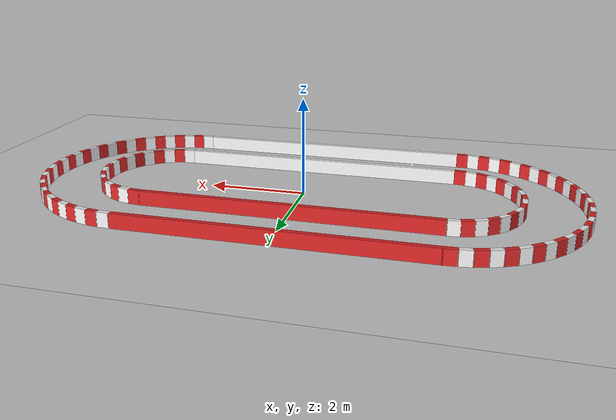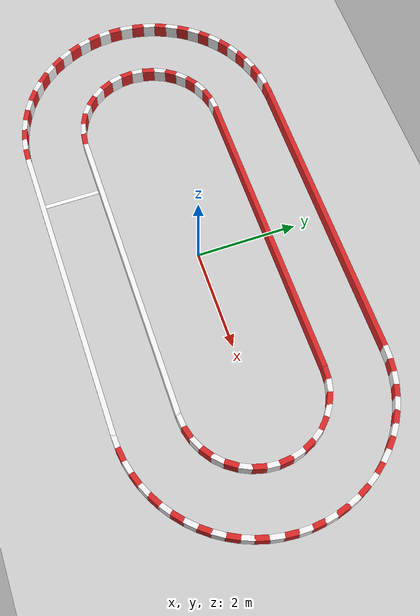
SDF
<?xml version="1.0"?>
<!-- GENERATED by tools/make_race_track.py - edit the script, not this file.
     Stadium track, counter-clockwise. Start line at x=-2 on the bottom straight
     (spawn the car at x=-2.5 y=-2 yaw=0). -->
<sdf version="1.6">
  <world name="race_track">
    <include><uri>model://ground_plane</uri></include>
    <include><uri>model://sun</uri></include>

    <model name="track_walls">
      <static>true</static>
      <link name="link">
      <collision name="c0"><pose>0.0000 -1.4000 0.15 0 0 0.00000</pose>
        <geometry><box><size>6.0200 0.1 0.3</size></box></geometry></collision>
      <visual name="v0"><pose>0.0000 -1.4000 0.15 0 0 0.00000</pose>
        <geometry><box><size>6.0200 0.1 0.3</size></box></geometry>
        <material><ambient>0.95 0.95 0.95 1</ambient>
          <diffuse>0.95 0.95 0.95 1</diffuse></material></visual>
      <collision name="c1"><pose>0.0000 1.4000 0.15 0 0 0.00000</pose>
        <geometry><box><size>6.0200 0.1 0.3</size></box></geometry></collision>
      <visual name="v1"><pose>0.0000 1.4000 0.15 0 0 0.00000</pose>
        <geometry><box><size>6.0200 0.1 0.3</size></box></geometry>
        <material><ambient>0.85 0.15 0.15 1</ambient>
          <diffuse>0.85 0.15 0.15 1</diffuse></material></visual>
      <collision name="c2"><pose>3.1216 -1.3894 0.15 0 0 0.08727</pose>
        <geometry><box><size>0.2640 0.1 0.3</size></box></geometry></collision>
      <visual name="v2"><pose>3.1216 -1.3894 0.15 0 0 0.08727</pose>
        <geometry><box><size>0.2640 0.1 0.3</size></box></geometry>
        <material><ambient>0.95 0.95 0.95 1</ambient>
          <diffuse>0.95 0.95 0.95 1</diffuse></material></visual>
      <collision name="c3"><pose>3.3610 -1.3472 0.15 0 0 0.26180</pose>
        <geometry><box><size>0.2640 0.1 0.3</size></box></geometry></collision>
      <visual name="v3"><pose>3.3610 -1.3472 0.15 0 0 0.26180</pose>
        <geometry><box><size>0.2640 0.1 0.3</size></box></geometry>
        <material><ambient>0.85 0.15 0.15 1</ambient>
          <diffuse>0.85 0.15 0.15 1</diffuse></material></visual>
      <collision name="c4"><pose>3.5894 -1.2640 0.15 0 0 0.43633</pose>
        <geometry><box><size>0.2640 0.1 0.3</size></box></geometry></collision>
      <visual name="v4"><pose>3.5894 -1.2640 0.15 0 0 0.43633</pose>
        <geometry><box><size>0.2640 0.1 0.3</size></box></geometry>
        <material><ambient>0.95 0.95 0.95 1</ambient>
          <diffuse>0.95 0.95 0.95 1</diffuse></material></visual>
      <collision name="c5"><pose>3.8000 -1.1424 0.15 0 0 0.61087</pose>
        <geometry><box><size>0.2640 0.1 0.3</size></box></geometry></collision>
      <visual name="v5"><pose>3.8000 -1.1424 0.15 0 0 0.61087</pose>
        <geometry><box><size>0.2640 0.1 0.3</size></box></geometry>
        <material><ambient>0.85 0.15 0.15 1</ambient>
          <diffuse>0.85 0.15 0.15 1</diffuse></material></visual>
      <collision name="c6"><pose>3.9862 -0.9862 0.15 0 0 0.78540</pose>
        <geometry><box><size>0.2640 0.1 0.3</size></box></geometry></collision>
      <visual name="v6"><pose>3.9862 -0.9862 0.15 0 0 0.78540</pose>
        <geometry><box><size>0.2640 0.1 0.3</size></box></geometry>
        <material><ambient>0.95 0.95 0.95 1</ambient>
          <diffuse>0.95 0.95 0.95 1</diffuse></material></visual>
      <collision name="c7"><pose>4.1424 -0.8000 0.15 0 0 0.95993</pose>
        <geometry><box><size>0.2640 0.1 0.3</size></box></geometry></collision>
      <visual name="v7"><pose>4.1424 -0.8000 0.15 0 0 0.95993</pose>
        <geometry><box><size>0.2640 0.1 0.3</size></box></geometry>
        <material><ambient>0.85 0.15 0.15 1</ambient>
          <diffuse>0.85 0.15 0.15 1</diffuse></material></visual>
      <collision name="c8"><pose>4.2640 -0.5894 0.15 0 0 1.13446</pose>
        <geometry><box><size>0.2640 0.1 0.3</size></box></geometry></collision>
      <visual name="v8"><pose>4.2640 -0.5894 0.15 0 0 1.13446</pose>
        <geometry><box><size>0.2640 0.1 0.3</size></box></geometry>
        <material><ambient>0.95 0.95 0.95 1</ambient>
          <diffuse>0.95 0.95 0.95 1</diffuse></material></visual>
      <collision name="c9"><pose>4.3472 -0.3610 0.15 0 0 1.30900</pose>
        <geometry><box><size>0.2640 0.1 0.3</size></box></geometry></collision>
      <visual name="v9"><pose>4.3472 -0.3610 0.15 0 0 1.30900</pose>
        <geometry><box><size>0.2640 0.1 0.3</size></box></geometry>
        <material><ambient>0.85 0.15 0.15 1</ambient>
          <diffuse>0.85 0.15 0.15 1</diffuse></material></visual>
      <collision name="c10"><pose>4.3894 -0.1216 0.15 0 0 1.48353</pose>
        <geometry><box><size>0.2640 0.1 0.3</size></box></geometry></collision>
      <visual name="v10"><pose>4.3894 -0.1216 0.15 0 0 1.48353</pose>
        <geometry><box><size>0.2640 0.1 0.3</size></box></geometry>
        <material><ambient>0.95 0.95 0.95 1</ambient>
          <diffuse>0.95 0.95 0.95 1</diffuse></material></visual>
      <collision name="c11"><pose>4.3894 0.1216 0.15 0 0 1.65806</pose>
        <geometry><box><size>0.2640 0.1 0.3</size></box></geometry></collision>
      <visual name="v11"><pose>4.3894 0.1216 0.15 0 0 1.65806</pose>
        <geometry><box><size>0.2640 0.1 0.3</size></box></geometry>
        <material><ambient>0.85 0.15 0.15 1</ambient>
          <diffuse>0.85 0.15 0.15 1</diffuse></material></visual>
      <collision name="c12"><pose>4.3472 0.3610 0.15 0 0 1.83260</pose>
        <geometry><box><size>0.2640 0.1 0.3</size></box></geometry></collision>
      <visual name="v12"><pose>4.3472 0.3610 0.15 0 0 1.83260</pose>
        <geometry><box><size>0.2640 0.1 0.3</size></box></geometry>
        <material><ambient>0.95 0.95 0.95 1</ambient>
          <diffuse>0.95 0.95 0.95 1</diffuse></material></visual>
      <collision name="c13"><pose>4.2640 0.5894 0.15 0 0 2.00713</pose>
        <geometry><box><size>0.2640 0.1 0.3</size></box></geometry></collision>
      <visual name="v13"><pose>4.2640 0.5894 0.15 0 0 2.00713</pose>
        <geometry><box><size>0.2640 0.1 0.3</size></box></geometry>
        <material><ambient>0.85 0.15 0.15 1</ambient>
          <diffuse>0.85 0.15 0.15 1</diffuse></material></visual>
      <collision name="c14"><pose>4.1424 0.8000 0.15 0 0 2.18166</pose>
        <geometry><box><size>0.2640 0.1 0.3</size></box></geometry></collision>
      <visual name="v14"><pose>4.1424 0.8000 0.15 0 0 2.18166</pose>
        <geometry><box><size>0.2640 0.1 0.3</size></box></geometry>
        <material><ambient>0.95 0.95 0.95 1</ambient>
          <diffuse>0.95 0.95 0.95 1</diffuse></material></visual>
      <collision name="c15"><pose>3.9862 0.9862 0.15 0 0 2.35619</pose>
        <geometry><box><size>0.2640 0.1 0.3</size></box></geometry></collision>
      <visual name="v15"><pose>3.9862 0.9862 0.15 0 0 2.35619</pose>
        <geometry><box><size>0.2640 0.1 0.3</size></box></geometry>
        <material><ambient>0.85 0.15 0.15 1</ambient>
          <diffuse>0.85 0.15 0.15 1</diffuse></material></visual>
      <collision name="c16"><pose>3.8000 1.1424 0.15 0 0 2.53073</pose>
        <geometry><box><size>0.2640 0.1 0.3</size></box></geometry></collision>
      <visual name="v16"><pose>3.8000 1.1424 0.15 0 0 2.53073</pose>
        <geometry><box><size>0.2640 0.1 0.3</size></box></geometry>
        <material><ambient>0.95 0.95 0.95 1</ambient>
          <diffuse>0.95 0.95 0.95 1</diffuse></material></visual>
      <collision name="c17"><pose>3.5894 1.2640 0.15 0 0 2.70526</pose>
        <geometry><box><size>0.2640 0.1 0.3</size></box></geometry></collision>
      <visual name="v17"><pose>3.5894 1.2640 0.15 0 0 2.70526</pose>
        <geometry><box><size>0.2640 0.1 0.3</size></box></geometry>
        <material><ambient>0.85 0.15 0.15 1</ambient>
          <diffuse>0.85 0.15 0.15 1</diffuse></material></visual>
      <collision name="c18"><pose>3.3610 1.3472 0.15 0 0 2.87979</pose>
        <geometry><box><size>0.2640 0.1 0.3</size></box></geometry></collision>
      <visual name="v18"><pose>3.3610 1.3472 0.15 0 0 2.87979</pose>
        <geometry><box><size>0.2640 0.1 0.3</size></box></geometry>
        <material><ambient>0.95 0.95 0.95 1</ambient>
          <diffuse>0.95 0.95 0.95 1</diffuse></material></visual>
      <collision name="c19"><pose>3.1216 1.3894 0.15 0 0 3.05433</pose>
        <geometry><box><size>0.2640 0.1 0.3</size></box></geometry></collision>
      <visual name="v19"><pose>3.1216 1.3894 0.15 0 0 3.05433</pose>
        <geometry><box><size>0.2640 0.1 0.3</size></box></geometry>
        <material><ambient>0.85 0.15 0.15 1</ambient>
          <diffuse>0.85 0.15 0.15 1</diffuse></material></visual>
      <collision name="c20"><pose>-3.1216 1.3894 0.15 0 0 -3.05433</pose>
        <geometry><box><size>0.2640 0.1 0.3</size></box></geometry></collision>
      <visual name="v20"><pose>-3.1216 1.3894 0.15 0 0 -3.05433</pose>
        <geometry><box><size>0.2640 0.1 0.3</size></box></geometry>
        <material><ambient>0.95 0.95 0.95 1</ambient>
          <diffuse>0.95 0.95 0.95 1</diffuse></material></visual>
      <collision name="c21"><pose>-3.3610 1.3472 0.15 0 0 -2.87979</pose>
        <geometry><box><size>0.2640 0.1 0.3</size></box></geometry></collision>
      <visual name="v21"><pose>-3.3610 1.3472 0.15 0 0 -2.87979</pose>
        <geometry><box><size>0.2640 0.1 0.3</size></box></geometry>
        <material><ambient>0.85 0.15 0.15 1</ambient>
          <diffuse>0.85 0.15 0.15 1</diffuse></material></visual>
      <collision name="c22"><pose>-3.5894 1.2640 0.15 0 0 -2.70526</pose>
        <geometry><box><size>0.2640 0.1 0.3</size></box></geometry></collision>
      <visual name="v22"><pose>-3.5894 1.2640 0.15 0 0 -2.70526</pose>
        <geometry><box><size>0.2640 0.1 0.3</size></box></geometry>
        <material><ambient>0.95 0.95 0.95 1</ambient>
          <diffuse>0.95 0.95 0.95 1</diffuse></material></visual>
      <collision name="c23"><pose>-3.8000 1.1424 0.15 0 0 -2.53073</pose>
        <geometry><box><size>0.2640 0.1 0.3</size></box></geometry></collision>
      <visual name="v23"><pose>-3.8000 1.1424 0.15 0 0 -2.53073</pose>
        <geometry><box><size>0.2640 0.1 0.3</size></box></geometry>
        <material><ambient>0.85 0.15 0.15 1</ambient>
          <diffuse>0.85 0.15 0.15 1</diffuse></material></visual>
      <collision name="c24"><pose>-3.9862 0.9862 0.15 0 0 -2.35619</pose>
        <geometry><box><size>0.2640 0.1 0.3</size></box></geometry></collision>
      <visual name="v24"><pose>-3.9862 0.9862 0.15 0 0 -2.35619</pose>
        <geometry><box><size>0.2640 0.1 0.3</size></box></geometry>
        <material><ambient>0.95 0.95 0.95 1</ambient>
          <diffuse>0.95 0.95 0.95 1</diffuse></material></visual>
      <collision name="c25"><pose>-4.1424 0.8000 0.15 0 0 -2.18166</pose>
        <geometry><box><size>0.2640 0.1 0.3</size></box></geometry></collision>
      <visual name="v25"><pose>-4.1424 0.8000 0.15 0 0 -2.18166</pose>
        <geometry><box><size>0.2640 0.1 0.3</size></box></geometry>
        <material><ambient>0.85 0.15 0.15 1</ambient>
          <diffuse>0.85 0.15 0.15 1</diffuse></material></visual>
      <collision name="c26"><pose>-4.2640 0.5894 0.15 0 0 -2.00713</pose>
        <geometry><box><size>0.2640 0.1 0.3</size></box></geometry></collision>
      <visual name="v26"><pose>-4.2640 0.5894 0.15 0 0 -2.00713</pose>
        <geometry><box><size>0.2640 0.1 0.3</size></box></geometry>
        <material><ambient>0.95 0.95 0.95 1</ambient>
          <diffuse>0.95 0.95 0.95 1</diffuse></material></visual>
      <collision name="c27"><pose>-4.3472 0.3610 0.15 0 0 -1.83260</pose>
        <geometry><box><size>0.2640 0.1 0.3</size></box></geometry></collision>
      <visual name="v27"><pose>-4.3472 0.3610 0.15 0 0 -1.83260</pose>
        <geometry><box><size>0.2640 0.1 0.3</size></box></geometry>
        <material><ambient>0.85 0.15 0.15 1</ambient>
          <diffuse>0.85 0.15 0.15 1</diffuse></material></visual>
      <collision name="c28"><pose>-4.3894 0.1216 0.15 0 0 -1.65806</pose>
        <geometry><box><size>0.2640 0.1 0.3</size></box></geometry></collision>
      <visual name="v28"><pose>-4.3894 0.1216 0.15 0 0 -1.65806</pose>
        <geometry><box><size>0.2640 0.1 0.3</size></box></geometry>
        <material><ambient>0.95 0.95 0.95 1</ambient>
          <diffuse>0.95 0.95 0.95 1</diffuse></material></visual>
      <collision name="c29"><pose>-4.3894 -0.1216 0.15 0 0 -1.48353</pose>
        <geometry><box><size>0.2640 0.1 0.3</size></box></geometry></collision>
      <visual name="v29"><pose>-4.3894 -0.1216 0.15 0 0 -1.48353</pose>
        <geometry><box><size>0.2640 0.1 0.3</size></box></geometry>
        <material><ambient>0.85 0.15 0.15 1</ambient>
          <diffuse>0.85 0.15 0.15 1</diffuse></material></visual>
      <collision name="c30"><pose>-4.3472 -0.3610 0.15 0 0 -1.30900</pose>
        <geometry><box><size>0.2640 0.1 0.3</size></box></geometry></collision>
      <visual name="v30"><pose>-4.3472 -0.3610 0.15 0 0 -1.30900</pose>
        <geometry><box><size>0.2640 0.1 0.3</size></box></geometry>
        <material><ambient>0.95 0.95 0.95 1</ambient>
          <diffuse>0.95 0.95 0.95 1</diffuse></material></visual>
      <collision name="c31"><pose>-4.2640 -0.5894 0.15 0 0 -1.13446</pose>
        <geometry><box><size>0.2640 0.1 0.3</size></box></geometry></collision>
      <visual name="v31"><pose>-4.2640 -0.5894 0.15 0 0 -1.13446</pose>
        <geometry><box><size>0.2640 0.1 0.3</size></box></geometry>
        <material><ambient>0.85 0.15 0.15 1</ambient>
          <diffuse>0.85 0.15 0.15 1</diffuse></material></visual>
      <collision name="c32"><pose>-4.1424 -0.8000 0.15 0 0 -0.95993</pose>
        <geometry><box><size>0.2640 0.1 0.3</size></box></geometry></collision>
      <visual name="v32"><pose>-4.1424 -0.8000 0.15 0 0 -0.95993</pose>
        <geometry><box><size>0.2640 0.1 0.3</size></box></geometry>
        <material><ambient>0.95 0.95 0.95 1</ambient>
          <diffuse>0.95 0.95 0.95 1</diffuse></material></visual>
      <collision name="c33"><pose>-3.9862 -0.9862 0.15 0 0 -0.78540</pose>
        <geometry><box><size>0.2640 0.1 0.3</size></box></geometry></collision>
      <visual name="v33"><pose>-3.9862 -0.9862 0.15 0 0 -0.78540</pose>
        <geometry><box><size>0.2640 0.1 0.3</size></box></geometry>
        <material><ambient>0.85 0.15 0.15 1</ambient>
          <diffuse>0.85 0.15 0.15 1</diffuse></material></visual>
      <collision name="c34"><pose>-3.8000 -1.1424 0.15 0 0 -0.61087</pose>
        <geometry><box><size>0.2640 0.1 0.3</size></box></geometry></collision>
      <visual name="v34"><pose>-3.8000 -1.1424 0.15 0 0 -0.61087</pose>
        <geometry><box><size>0.2640 0.1 0.3</size></box></geometry>
        <material><ambient>0.95 0.95 0.95 1</ambient>
          <diffuse>0.95 0.95 0.95 1</diffuse></material></visual>
      <collision name="c35"><pose>-3.5894 -1.2640 0.15 0 0 -0.43633</pose>
        <geometry><box><size>0.2640 0.1 0.3</size></box></geometry></collision>
      <visual name="v35"><pose>-3.5894 -1.2640 0.15 0 0 -0.43633</pose>
        <geometry><box><size>0.2640 0.1 0.3</size></box></geometry>
        <material><ambient>0.85 0.15 0.15 1</ambient>
          <diffuse>0.85 0.15 0.15 1</diffuse></material></visual>
      <collision name="c36"><pose>-3.3610 -1.3472 0.15 0 0 -0.26180</pose>
        <geometry><box><size>0.2640 0.1 0.3</size></box></geometry></collision>
      <visual name="v36"><pose>-3.3610 -1.3472 0.15 0 0 -0.26180</pose>
        <geometry><box><size>0.2640 0.1 0.3</size></box></geometry>
        <material><ambient>0.95 0.95 0.95 1</ambient>
          <diffuse>0.95 0.95 0.95 1</diffuse></material></visual>
      <collision name="c37"><pose>-3.1216 -1.3894 0.15 0 0 -0.08727</pose>
        <geometry><box><size>0.2640 0.1 0.3</size></box></geometry></collision>
      <visual name="v37"><pose>-3.1216 -1.3894 0.15 0 0 -0.08727</pose>
        <geometry><box><size>0.2640 0.1 0.3</size></box></geometry>
        <material><ambient>0.85 0.15 0.15 1</ambient>
          <diffuse>0.85 0.15 0.15 1</diffuse></material></visual>
      <collision name="c38"><pose>0.0000 -2.6000 0.15 0 0 0.00000</pose>
        <geometry><box><size>6.0200 0.1 0.3</size></box></geometry></collision>
      <visual name="v38"><pose>0.0000 -2.6000 0.15 0 0 0.00000</pose>
        <geometry><box><size>6.0200 0.1 0.3</size></box></geometry>
        <material><ambient>0.95 0.95 0.95 1</ambient>
          <diffuse>0.95 0.95 0.95 1</diffuse></material></visual>
      <collision name="c39"><pose>0.0000 2.6000 0.15 0 0 0.00000</pose>
        <geometry><box><size>6.0200 0.1 0.3</size></box></geometry></collision>
      <visual name="v39"><pose>0.0000 2.6000 0.15 0 0 0.00000</pose>
        <geometry><box><size>6.0200 0.1 0.3</size></box></geometry>
        <material><ambient>0.85 0.15 0.15 1</ambient>
          <diffuse>0.85 0.15 0.15 1</diffuse></material></visual>
      <collision name="c40"><pose>3.1236 -2.5941 0.15 0 0 0.04760</pose>
        <geometry><box><size>0.2674 0.1 0.3</size></box></geometry></collision>
      <visual name="v40"><pose>3.1236 -2.5941 0.15 0 0 0.04760</pose>
        <geometry><box><size>0.2674 0.1 0.3</size></box></geometry>
        <material><ambient>0.95 0.95 0.95 1</ambient>
          <diffuse>0.95 0.95 0.95 1</diffuse></material></visual>
      <collision name="c41"><pose>3.3696 -2.5706 0.15 0 0 0.14280</pose>
        <geometry><box><size>0.2674 0.1 0.3</size></box></geometry></collision>
      <visual name="v41"><pose>3.3696 -2.5706 0.15 0 0 0.14280</pose>
        <geometry><box><size>0.2674 0.1 0.3</size></box></geometry>
        <material><ambient>0.85 0.15 0.15 1</ambient>
          <diffuse>0.85 0.15 0.15 1</diffuse></material></visual>
      <collision name="c42"><pose>3.6123 -2.5238 0.15 0 0 0.23800</pose>
        <geometry><box><size>0.2674 0.1 0.3</size></box></geometry></collision>
      <visual name="v42"><pose>3.6123 -2.5238 0.15 0 0 0.23800</pose>
        <geometry><box><size>0.2674 0.1 0.3</size></box></geometry>
        <material><ambient>0.95 0.95 0.95 1</ambient>
          <diffuse>0.95 0.95 0.95 1</diffuse></material></visual>
      <collision name="c43"><pose>3.8494 -2.4542 0.15 0 0 0.33320</pose>
        <geometry><box><size>0.2674 0.1 0.3</size></box></geometry></collision>
      <visual name="v43"><pose>3.8494 -2.4542 0.15 0 0 0.33320</pose>
        <geometry><box><size>0.2674 0.1 0.3</size></box></geometry>
        <material><ambient>0.85 0.15 0.15 1</ambient>
          <diffuse>0.85 0.15 0.15 1</diffuse></material></visual>
      <collision name="c44"><pose>4.0789 -2.3624 0.15 0 0 0.42840</pose>
        <geometry><box><size>0.2674 0.1 0.3</size></box></geometry></collision>
      <visual name="v44"><pose>4.0789 -2.3624 0.15 0 0 0.42840</pose>
        <geometry><box><size>0.2674 0.1 0.3</size></box></geometry>
        <material><ambient>0.95 0.95 0.95 1</ambient>
          <diffuse>0.95 0.95 0.95 1</diffuse></material></visual>
      <collision name="c45"><pose>4.2985 -2.2491 0.15 0 0 0.52360</pose>
        <geometry><box><size>0.2674 0.1 0.3</size></box></geometry></collision>
      <visual name="v45"><pose>4.2985 -2.2491 0.15 0 0 0.52360</pose>
        <geometry><box><size>0.2674 0.1 0.3</size></box></geometry>
        <material><ambient>0.85 0.15 0.15 1</ambient>
          <diffuse>0.85 0.15 0.15 1</diffuse></material></visual>
      <collision name="c46"><pose>4.5064 -2.1155 0.15 0 0 0.61880</pose>
        <geometry><box><size>0.2674 0.1 0.3</size></box></geometry></collision>
      <visual name="v46"><pose>4.5064 -2.1155 0.15 0 0 0.61880</pose>
        <geometry><box><size>0.2674 0.1 0.3</size></box></geometry>
        <material><ambient>0.95 0.95 0.95 1</ambient>
          <diffuse>0.95 0.95 0.95 1</diffuse></material></visual>
      <collision name="c47"><pose>4.7007 -1.9627 0.15 0 0 0.71400</pose>
        <geometry><box><size>0.2674 0.1 0.3</size></box></geometry></collision>
      <visual name="v47"><pose>4.7007 -1.9627 0.15 0 0 0.71400</pose>
        <geometry><box><size>0.2674 0.1 0.3</size></box></geometry>
        <material><ambient>0.85 0.15 0.15 1</ambient>
          <diffuse>0.85 0.15 0.15 1</diffuse></material></visual>
      <collision name="c48"><pose>4.8796 -1.7922 0.15 0 0 0.80920</pose>
        <geometry><box><size>0.2674 0.1 0.3</size></box></geometry></collision>
      <visual name="v48"><pose>4.8796 -1.7922 0.15 0 0 0.80920</pose>
        <geometry><box><size>0.2674 0.1 0.3</size></box></geometry>
        <material><ambient>0.95 0.95 0.95 1</ambient>
          <diffuse>0.95 0.95 0.95 1</diffuse></material></visual>
      <collision name="c49"><pose>5.0414 -1.6054 0.15 0 0 0.90440</pose>
        <geometry><box><size>0.2674 0.1 0.3</size></box></geometry></collision>
      <visual name="v49"><pose>5.0414 -1.6054 0.15 0 0 0.90440</pose>
        <geometry><box><size>0.2674 0.1 0.3</size></box></geometry>
        <material><ambient>0.85 0.15 0.15 1</ambient>
          <diffuse>0.85 0.15 0.15 1</diffuse></material></visual>
      <collision name="c50"><pose>5.1848 -1.4041 0.15 0 0 0.99960</pose>
        <geometry><box><size>0.2674 0.1 0.3</size></box></geometry></collision>
      <visual name="v50"><pose>5.1848 -1.4041 0.15 0 0 0.99960</pose>
        <geometry><box><size>0.2674 0.1 0.3</size></box></geometry>
        <material><ambient>0.95 0.95 0.95 1</ambient>
          <diffuse>0.95 0.95 0.95 1</diffuse></material></visual>
      <collision name="c51"><pose>5.3084 -1.1900 0.15 0 0 1.09480</pose>
        <geometry><box><size>0.2674 0.1 0.3</size></box></geometry></collision>
      <visual name="v51"><pose>5.3084 -1.1900 0.15 0 0 1.09480</pose>
        <geometry><box><size>0.2674 0.1 0.3</size></box></geometry>
        <material><ambient>0.85 0.15 0.15 1</ambient>
          <diffuse>0.85 0.15 0.15 1</diffuse></material></visual>
      <collision name="c52"><pose>5.4110 -0.9652 0.15 0 0 1.19000</pose>
        <geometry><box><size>0.2674 0.1 0.3</size></box></geometry></collision>
      <visual name="v52"><pose>5.4110 -0.9652 0.15 0 0 1.19000</pose>
        <geometry><box><size>0.2674 0.1 0.3</size></box></geometry>
        <material><ambient>0.95 0.95 0.95 1</ambient>
          <diffuse>0.95 0.95 0.95 1</diffuse></material></visual>
      <collision name="c53"><pose>5.4919 -0.7317 0.15 0 0 1.28520</pose>
        <geometry><box><size>0.2674 0.1 0.3</size></box></geometry></collision>
      <visual name="v53"><pose>5.4919 -0.7317 0.15 0 0 1.28520</pose>
        <geometry><box><size>0.2674 0.1 0.3</size></box></geometry>
        <material><ambient>0.85 0.15 0.15 1</ambient>
          <diffuse>0.85 0.15 0.15 1</diffuse></material></visual>
      <collision name="c54"><pose>5.5501 -0.4915 0.15 0 0 1.38040</pose>
        <geometry><box><size>0.2674 0.1 0.3</size></box></geometry></collision>
      <visual name="v54"><pose>5.5501 -0.4915 0.15 0 0 1.38040</pose>
        <geometry><box><size>0.2674 0.1 0.3</size></box></geometry>
        <material><ambient>0.95 0.95 0.95 1</ambient>
          <diffuse>0.95 0.95 0.95 1</diffuse></material></visual>
      <collision name="c55"><pose>5.5853 -0.2469 0.15 0 0 1.47560</pose>
        <geometry><box><size>0.2674 0.1 0.3</size></box></geometry></collision>
      <visual name="v55"><pose>5.5853 -0.2469 0.15 0 0 1.47560</pose>
        <geometry><box><size>0.2674 0.1 0.3</size></box></geometry>
        <material><ambient>0.85 0.15 0.15 1</ambient>
          <diffuse>0.85 0.15 0.15 1</diffuse></material></visual>
      <collision name="c56"><pose>5.5971 0.0000 0.15 0 0 1.57080</pose>
        <geometry><box><size>0.2674 0.1 0.3</size></box></geometry></collision>
      <visual name="v56"><pose>5.5971 0.0000 0.15 0 0 1.57080</pose>
        <geometry><box><size>0.2674 0.1 0.3</size></box></geometry>
        <material><ambient>0.95 0.95 0.95 1</ambient>
          <diffuse>0.95 0.95 0.95 1</diffuse></material></visual>
      <collision name="c57"><pose>5.5853 0.2469 0.15 0 0 1.66600</pose>
        <geometry><box><size>0.2674 0.1 0.3</size></box></geometry></collision>
      <visual name="v57"><pose>5.5853 0.2469 0.15 0 0 1.66600</pose>
        <geometry><box><size>0.2674 0.1 0.3</size></box></geometry>
        <material><ambient>0.85 0.15 0.15 1</ambient>
          <diffuse>0.85 0.15 0.15 1</diffuse></material></visual>
      <collision name="c58"><pose>5.5501 0.4915 0.15 0 0 1.76120</pose>
        <geometry><box><size>0.2674 0.1 0.3</size></box></geometry></collision>
      <visual name="v58"><pose>5.5501 0.4915 0.15 0 0 1.76120</pose>
        <geometry><box><size>0.2674 0.1 0.3</size></box></geometry>
        <material><ambient>0.95 0.95 0.95 1</ambient>
          <diffuse>0.95 0.95 0.95 1</diffuse></material></visual>
      <collision name="c59"><pose>5.4919 0.7317 0.15 0 0 1.85640</pose>
        <geometry><box><size>0.2674 0.1 0.3</size></box></geometry></collision>
      <visual name="v59"><pose>5.4919 0.7317 0.15 0 0 1.85640</pose>
        <geometry><box><size>0.2674 0.1 0.3</size></box></geometry>
        <material><ambient>0.85 0.15 0.15 1</ambient>
          <diffuse>0.85 0.15 0.15 1</diffuse></material></visual>
      <collision name="c60"><pose>5.4110 0.9652 0.15 0 0 1.95160</pose>
        <geometry><box><size>0.2674 0.1 0.3</size></box></geometry></collision>
      <visual name="v60"><pose>5.4110 0.9652 0.15 0 0 1.95160</pose>
        <geometry><box><size>0.2674 0.1 0.3</size></box></geometry>
        <material><ambient>0.95 0.95 0.95 1</ambient>
          <diffuse>0.95 0.95 0.95 1</diffuse></material></visual>
      <collision name="c61"><pose>5.3084 1.1900 0.15 0 0 2.04680</pose>
        <geometry><box><size>0.2674 0.1 0.3</size></box></geometry></collision>
      <visual name="v61"><pose>5.3084 1.1900 0.15 0 0 2.04680</pose>
        <geometry><box><size>0.2674 0.1 0.3</size></box></geometry>
        <material><ambient>0.85 0.15 0.15 1</ambient>
          <diffuse>0.85 0.15 0.15 1</diffuse></material></visual>
      <collision name="c62"><pose>5.1848 1.4041 0.15 0 0 2.14199</pose>
        <geometry><box><size>0.2674 0.1 0.3</size></box></geometry></collision>
      <visual name="v62"><pose>5.1848 1.4041 0.15 0 0 2.14199</pose>
        <geometry><box><size>0.2674 0.1 0.3</size></box></geometry>
        <material><ambient>0.95 0.95 0.95 1</ambient>
          <diffuse>0.95 0.95 0.95 1</diffuse></material></visual>
      <collision name="c63"><pose>5.0414 1.6054 0.15 0 0 2.23719</pose>
        <geometry><box><size>0.2674 0.1 0.3</size></box></geometry></collision>
      <visual name="v63"><pose>5.0414 1.6054 0.15 0 0 2.23719</pose>
        <geometry><box><size>0.2674 0.1 0.3</size></box></geometry>
        <material><ambient>0.85 0.15 0.15 1</ambient>
          <diffuse>0.85 0.15 0.15 1</diffuse></material></visual>
      <collision name="c64"><pose>4.8796 1.7922 0.15 0 0 2.33239</pose>
        <geometry><box><size>0.2674 0.1 0.3</size></box></geometry></collision>
      <visual name="v64"><pose>4.8796 1.7922 0.15 0 0 2.33239</pose>
        <geometry><box><size>0.2674 0.1 0.3</size></box></geometry>
        <material><ambient>0.95 0.95 0.95 1</ambient>
          <diffuse>0.95 0.95 0.95 1</diffuse></material></visual>
      <collision name="c65"><pose>4.7007 1.9627 0.15 0 0 2.42759</pose>
        <geometry><box><size>0.2674 0.1 0.3</size></box></geometry></collision>
      <visual name="v65"><pose>4.7007 1.9627 0.15 0 0 2.42759</pose>
        <geometry><box><size>0.2674 0.1 0.3</size></box></geometry>
        <material><ambient>0.85 0.15 0.15 1</ambient>
          <diffuse>0.85 0.15 0.15 1</diffuse></material></visual>
      <collision name="c66"><pose>4.5064 2.1155 0.15 0 0 2.52279</pose>
        <geometry><box><size>0.2674 0.1 0.3</size></box></geometry></collision>
      <visual name="v66"><pose>4.5064 2.1155 0.15 0 0 2.52279</pose>
        <geometry><box><size>0.2674 0.1 0.3</size></box></geometry>
        <material><ambient>0.95 0.95 0.95 1</ambient>
          <diffuse>0.95 0.95 0.95 1</diffuse></material></visual>
      <collision name="c67"><pose>4.2985 2.2491 0.15 0 0 2.61799</pose>
        <geometry><box><size>0.2674 0.1 0.3</size></box></geometry></collision>
      <visual name="v67"><pose>4.2985 2.2491 0.15 0 0 2.61799</pose>
        <geometry><box><size>0.2674 0.1 0.3</size></box></geometry>
        <material><ambient>0.85 0.15 0.15 1</ambient>
          <diffuse>0.85 0.15 0.15 1</diffuse></material></visual>
      <collision name="c68"><pose>4.0789 2.3624 0.15 0 0 2.71319</pose>
        <geometry><box><size>0.2674 0.1 0.3</size></box></geometry></collision>
      <visual name="v68"><pose>4.0789 2.3624 0.15 0 0 2.71319</pose>
        <geometry><box><size>0.2674 0.1 0.3</size></box></geometry>
        <material><ambient>0.95 0.95 0.95 1</ambient>
          <diffuse>0.95 0.95 0.95 1</diffuse></material></visual>
      <collision name="c69"><pose>3.8494 2.4542 0.15 0 0 2.80839</pose>
        <geometry><box><size>0.2674 0.1 0.3</size></box></geometry></collision>
      <visual name="v69"><pose>3.8494 2.4542 0.15 0 0 2.80839</pose>
        <geometry><box><size>0.2674 0.1 0.3</size></box></geometry>
        <material><ambient>0.85 0.15 0.15 1</ambient>
          <diffuse>0.85 0.15 0.15 1</diffuse></material></visual>
      <collision name="c70"><pose>3.6123 2.5238 0.15 0 0 2.90359</pose>
        <geometry><box><size>0.2674 0.1 0.3</size></box></geometry></collision>
      <visual name="v70"><pose>3.6123 2.5238 0.15 0 0 2.90359</pose>
        <geometry><box><size>0.2674 0.1 0.3</size></box></geometry>
        <material><ambient>0.95 0.95 0.95 1</ambient>
          <diffuse>0.95 0.95 0.95 1</diffuse></material></visual>
      <collision name="c71"><pose>3.3696 2.5706 0.15 0 0 2.99879</pose>
        <geometry><box><size>0.2674 0.1 0.3</size></box></geometry></collision>
      <visual name="v71"><pose>3.3696 2.5706 0.15 0 0 2.99879</pose>
        <geometry><box><size>0.2674 0.1 0.3</size></box></geometry>
        <material><ambient>0.85 0.15 0.15 1</ambient>
          <diffuse>0.85 0.15 0.15 1</diffuse></material></visual>
      <collision name="c72"><pose>3.1236 2.5941 0.15 0 0 3.09399</pose>
        <geometry><box><size>0.2674 0.1 0.3</size></box></geometry></collision>
      <visual name="v72"><pose>3.1236 2.5941 0.15 0 0 3.09399</pose>
        <geometry><box><size>0.2674 0.1 0.3</size></box></geometry>
        <material><ambient>0.95 0.95 0.95 1</ambient>
          <diffuse>0.95 0.95 0.95 1</diffuse></material></visual>
      <collision name="c73"><pose>-3.1236 2.5941 0.15 0 0 -3.09399</pose>
        <geometry><box><size>0.2674 0.1 0.3</size></box></geometry></collision>
      <visual name="v73"><pose>-3.1236 2.5941 0.15 0 0 -3.09399</pose>
        <geometry><box><size>0.2674 0.1 0.3</size></box></geometry>
        <material><ambient>0.85 0.15 0.15 1</ambient>
          <diffuse>0.85 0.15 0.15 1</diffuse></material></visual>
      <collision name="c74"><pose>-3.3696 2.5706 0.15 0 0 -2.99879</pose>
        <geometry><box><size>0.2674 0.1 0.3</size></box></geometry></collision>
      <visual name="v74"><pose>-3.3696 2.5706 0.15 0 0 -2.99879</pose>
        <geometry><box><size>0.2674 0.1 0.3</size></box></geometry>
        <material><ambient>0.95 0.95 0.95 1</ambient>
          <diffuse>0.95 0.95 0.95 1</diffuse></material></visual>
      <collision name="c75"><pose>-3.6123 2.5238 0.15 0 0 -2.90359</pose>
        <geometry><box><size>0.2674 0.1 0.3</size></box></geometry></collision>
      <visual name="v75"><pose>-3.6123 2.5238 0.15 0 0 -2.90359</pose>
        <geometry><box><size>0.2674 0.1 0.3</size></box></geometry>
        <material><ambient>0.85 0.15 0.15 1</ambient>
          <diffuse>0.85 0.15 0.15 1</diffuse></material></visual>
      <collision name="c76"><pose>-3.8494 2.4542 0.15 0 0 -2.80839</pose>
        <geometry><box><size>0.2674 0.1 0.3</size></box></geometry></collision>
      <visual name="v76"><pose>-3.8494 2.4542 0.15 0 0 -2.80839</pose>
        <geometry><box><size>0.2674 0.1 0.3</size></box></geometry>
        <material><ambient>0.95 0.95 0.95 1</ambient>
          <diffuse>0.95 0.95 0.95 1</diffuse></material></visual>
      <collision name="c77"><pose>-4.0789 2.3624 0.15 0 0 -2.71319</pose>
        <geometry><box><size>0.2674 0.1 0.3</size></box></geometry></collision>
      <visual name="v77"><pose>-4.0789 2.3624 0.15 0 0 -2.71319</pose>
        <geometry><box><size>0.2674 0.1 0.3</size></box></geometry>
        <material><ambient>0.85 0.15 0.15 1</ambient>
          <diffuse>0.85 0.15 0.15 1</diffuse></material></visual>
      <collision name="c78"><pose>-4.2985 2.2491 0.15 0 0 -2.61799</pose>
        <geometry><box><size>0.2674 0.1 0.3</size></box></geometry></collision>
      <visual name="v78"><pose>-4.2985 2.2491 0.15 0 0 -2.61799</pose>
        <geometry><box><size>0.2674 0.1 0.3</size></box></geometry>
        <material><ambient>0.95 0.95 0.95 1</ambient>
          <diffuse>0.95 0.95 0.95 1</diffuse></material></visual>
      <collision name="c79"><pose>-4.5064 2.1155 0.15 0 0 -2.52279</pose>
        <geometry><box><size>0.2674 0.1 0.3</size></box></geometry></collision>
      <visual name="v79"><pose>-4.5064 2.1155 0.15 0 0 -2.52279</pose>
        <geometry><box><size>0.2674 0.1 0.3</size></box></geometry>
        <material><ambient>0.85 0.15 0.15 1</ambient>
          <diffuse>0.85 0.15 0.15 1</diffuse></material></visual>
      <collision name="c80"><pose>-4.7007 1.9627 0.15 0 0 -2.42759</pose>
        <geometry><box><size>0.2674 0.1 0.3</size></box></geometry></collision>
      <visual name="v80"><pose>-4.7007 1.9627 0.15 0 0 -2.42759</pose>
        <geometry><box><size>0.2674 0.1 0.3</size></box></geometry>
        <material><ambient>0.95 0.95 0.95 1</ambient>
          <diffuse>0.95 0.95 0.95 1</diffuse></material></visual>
      <collision name="c81"><pose>-4.8796 1.7922 0.15 0 0 -2.33239</pose>
        <geometry><box><size>0.2674 0.1 0.3</size></box></geometry></collision>
      <visual name="v81"><pose>-4.8796 1.7922 0.15 0 0 -2.33239</pose>
        <geometry><box><size>0.2674 0.1 0.3</size></box></geometry>
        <material><ambient>0.85 0.15 0.15 1</ambient>
          <diffuse>0.85 0.15 0.15 1</diffuse></material></visual>
      <collision name="c82"><pose>-5.0414 1.6054 0.15 0 0 -2.23719</pose>
        <geometry><box><size>0.2674 0.1 0.3</size></box></geometry></collision>
      <visual name="v82"><pose>-5.0414 1.6054 0.15 0 0 -2.23719</pose>
        <geometry><box><size>0.2674 0.1 0.3</size></box></geometry>
        <material><ambient>0.95 0.95 0.95 1</ambient>
          <diffuse>0.95 0.95 0.95 1</diffuse></material></visual>
      <collision name="c83"><pose>-5.1848 1.4041 0.15 0 0 -2.14199</pose>
        <geometry><box><size>0.2674 0.1 0.3</size></box></geometry></collision>
      <visual name="v83"><pose>-5.1848 1.4041 0.15 0 0 -2.14199</pose>
        <geometry><box><size>0.2674 0.1 0.3</size></box></geometry>
        <material><ambient>0.85 0.15 0.15 1</ambient>
          <diffuse>0.85 0.15 0.15 1</diffuse></material></visual>
      <collision name="c84"><pose>-5.3084 1.1900 0.15 0 0 -2.04680</pose>
        <geometry><box><size>0.2674 0.1 0.3</size></box></geometry></collision>
      <visual name="v84"><pose>-5.3084 1.1900 0.15 0 0 -2.04680</pose>
        <geometry><box><size>0.2674 0.1 0.3</size></box></geometry>
        <material><ambient>0.95 0.95 0.95 1</ambient>
          <diffuse>0.95 0.95 0.95 1</diffuse></material></visual>
      <collision name="c85"><pose>-5.4110 0.9652 0.15 0 0 -1.95160</pose>
        <geometry><box><size>0.2674 0.1 0.3</size></box></geometry></collision>
      <visual name="v85"><pose>-5.4110 0.9652 0.15 0 0 -1.95160</pose>
        <geometry><box><size>0.2674 0.1 0.3</size></box></geometry>
        <material><ambient>0.85 0.15 0.15 1</ambient>
          <diffuse>0.85 0.15 0.15 1</diffuse></material></visual>
      <collision name="c86"><pose>-5.4919 0.7317 0.15 0 0 -1.85640</pose>
        <geometry><box><size>0.2674 0.1 0.3</size></box></geometry></collision>
      <visual name="v86"><pose>-5.4919 0.7317 0.15 0 0 -1.85640</pose>
        <geometry><box><size>0.2674 0.1 0.3</size></box></geometry>
        <material><ambient>0.95 0.95 0.95 1</ambient>
          <diffuse>0.95 0.95 0.95 1</diffuse></material></visual>
      <collision name="c87"><pose>-5.5501 0.4915 0.15 0 0 -1.76120</pose>
        <geometry><box><size>0.2674 0.1 0.3</size></box></geometry></collision>
      <visual name="v87"><pose>-5.5501 0.4915 0.15 0 0 -1.76120</pose>
        <geometry><box><size>0.2674 0.1 0.3</size></box></geometry>
        <material><ambient>0.85 0.15 0.15 1</ambient>
          <diffuse>0.85 0.15 0.15 1</diffuse></material></visual>
      <collision name="c88"><pose>-5.5853 0.2469 0.15 0 0 -1.66600</pose>
        <geometry><box><size>0.2674 0.1 0.3</size></box></geometry></collision>
      <visual name="v88"><pose>-5.5853 0.2469 0.15 0 0 -1.66600</pose>
        <geometry><box><size>0.2674 0.1 0.3</size></box></geometry>
        <material><ambient>0.95 0.95 0.95 1</ambient>
          <diffuse>0.95 0.95 0.95 1</diffuse></material></visual>
      <collision name="c89"><pose>-5.5971 0.0000 0.15 0 0 -1.57080</pose>
        <geometry><box><size>0.2674 0.1 0.3</size></box></geometry></collision>
      <visual name="v89"><pose>-5.5971 0.0000 0.15 0 0 -1.57080</pose>
        <geometry><box><size>0.2674 0.1 0.3</size></box></geometry>
        <material><ambient>0.85 0.15 0.15 1</ambient>
          <diffuse>0.85 0.15 0.15 1</diffuse></material></visual>
      <collision name="c90"><pose>-5.5853 -0.2469 0.15 0 0 -1.47560</pose>
        <geometry><box><size>0.2674 0.1 0.3</size></box></geometry></collision>
      <visual name="v90"><pose>-5.5853 -0.2469 0.15 0 0 -1.47560</pose>
        <geometry><box><size>0.2674 0.1 0.3</size></box></geometry>
        <material><ambient>0.95 0.95 0.95 1</ambient>
          <diffuse>0.95 0.95 0.95 1</diffuse></material></visual>
      <collision name="c91"><pose>-5.5501 -0.4915 0.15 0 0 -1.38040</pose>
        <geometry><box><size>0.2674 0.1 0.3</size></box></geometry></collision>
      <visual name="v91"><pose>-5.5501 -0.4915 0.15 0 0 -1.38040</pose>
        <geometry><box><size>0.2674 0.1 0.3</size></box></geometry>
        <material><ambient>0.85 0.15 0.15 1</ambient>
          <diffuse>0.85 0.15 0.15 1</diffuse></material></visual>
      <collision name="c92"><pose>-5.4919 -0.7317 0.15 0 0 -1.28520</pose>
        <geometry><box><size>0.2674 0.1 0.3</size></box></geometry></collision>
      <visual name="v92"><pose>-5.4919 -0.7317 0.15 0 0 -1.28520</pose>
        <geometry><box><size>0.2674 0.1 0.3</size></box></geometry>
        <material><ambient>0.95 0.95 0.95 1</ambient>
          <diffuse>0.95 0.95 0.95 1</diffuse></material></visual>
      <collision name="c93"><pose>-5.4110 -0.9652 0.15 0 0 -1.19000</pose>
        <geometry><box><size>0.2674 0.1 0.3</size></box></geometry></collision>
      <visual name="v93"><pose>-5.4110 -0.9652 0.15 0 0 -1.19000</pose>
        <geometry><box><size>0.2674 0.1 0.3</size></box></geometry>
        <material><ambient>0.85 0.15 0.15 1</ambient>
          <diffuse>0.85 0.15 0.15 1</diffuse></material></visual>
      <collision name="c94"><pose>-5.3084 -1.1900 0.15 0 0 -1.09480</pose>
        <geometry><box><size>0.2674 0.1 0.3</size></box></geometry></collision>
      <visual name="v94"><pose>-5.3084 -1.1900 0.15 0 0 -1.09480</pose>
        <geometry><box><size>0.2674 0.1 0.3</size></box></geometry>
        <material><ambient>0.95 0.95 0.95 1</ambient>
          <diffuse>0.95 0.95 0.95 1</diffuse></material></visual>
      <collision name="c95"><pose>-5.1848 -1.4041 0.15 0 0 -0.99960</pose>
        <geometry><box><size>0.2674 0.1 0.3</size></box></geometry></collision>
      <visual name="v95"><pose>-5.1848 -1.4041 0.15 0 0 -0.99960</pose>
        <geometry><box><size>0.2674 0.1 0.3</size></box></geometry>
        <material><ambient>0.85 0.15 0.15 1</ambient>
          <diffuse>0.85 0.15 0.15 1</diffuse></material></visual>
      <collision name="c96"><pose>-5.0414 -1.6054 0.15 0 0 -0.90440</pose>
        <geometry><box><size>0.2674 0.1 0.3</size></box></geometry></collision>
      <visual name="v96"><pose>-5.0414 -1.6054 0.15 0 0 -0.90440</pose>
        <geometry><box><size>0.2674 0.1 0.3</size></box></geometry>
        <material><ambient>0.95 0.95 0.95 1</ambient>
          <diffuse>0.95 0.95 0.95 1</diffuse></material></visual>
      <collision name="c97"><pose>-4.8796 -1.7922 0.15 0 0 -0.80920</pose>
        <geometry><box><size>0.2674 0.1 0.3</size></box></geometry></collision>
      <visual name="v97"><pose>-4.8796 -1.7922 0.15 0 0 -0.80920</pose>
        <geometry><box><size>0.2674 0.1 0.3</size></box></geometry>
        <material><ambient>0.85 0.15 0.15 1</ambient>
          <diffuse>0.85 0.15 0.15 1</diffuse></material></visual>
      <collision name="c98"><pose>-4.7007 -1.9627 0.15 0 0 -0.71400</pose>
        <geometry><box><size>0.2674 0.1 0.3</size></box></geometry></collision>
      <visual name="v98"><pose>-4.7007 -1.9627 0.15 0 0 -0.71400</pose>
        <geometry><box><size>0.2674 0.1 0.3</size></box></geometry>
        <material><ambient>0.95 0.95 0.95 1</ambient>
          <diffuse>0.95 0.95 0.95 1</diffuse></material></visual>
      <collision name="c99"><pose>-4.5064 -2.1155 0.15 0 0 -0.61880</pose>
        <geometry><box><size>0.2674 0.1 0.3</size></box></geometry></collision>
      <visual name="v99"><pose>-4.5064 -2.1155 0.15 0 0 -0.61880</pose>
        <geometry><box><size>0.2674 0.1 0.3</size></box></geometry>
        <material><ambient>0.85 0.15 0.15 1</ambient>
          <diffuse>0.85 0.15 0.15 1</diffuse></material></visual>
      <collision name="c100"><pose>-4.2985 -2.2491 0.15 0 0 -0.52360</pose>
        <geometry><box><size>0.2674 0.1 0.3</size></box></geometry></collision>
      <visual name="v100"><pose>-4.2985 -2.2491 0.15 0 0 -0.52360</pose>
        <geometry><box><size>0.2674 0.1 0.3</size></box></geometry>
        <material><ambient>0.95 0.95 0.95 1</ambient>
          <diffuse>0.95 0.95 0.95 1</diffuse></material></visual>
      <collision name="c101"><pose>-4.0789 -2.3624 0.15 0 0 -0.42840</pose>
        <geometry><box><size>0.2674 0.1 0.3</size></box></geometry></collision>
      <visual name="v101"><pose>-4.0789 -2.3624 0.15 0 0 -0.42840</pose>
        <geometry><box><size>0.2674 0.1 0.3</size></box></geometry>
        <material><ambient>0.85 0.15 0.15 1</ambient>
          <diffuse>0.85 0.15 0.15 1</diffuse></material></visual>
      <collision name="c102"><pose>-3.8494 -2.4542 0.15 0 0 -0.33320</pose>
        <geometry><box><size>0.2674 0.1 0.3</size></box></geometry></collision>
      <visual name="v102"><pose>-3.8494 -2.4542 0.15 0 0 -0.33320</pose>
        <geometry><box><size>0.2674 0.1 0.3</size></box></geometry>
        <material><ambient>0.95 0.95 0.95 1</ambient>
          <diffuse>0.95 0.95 0.95 1</diffuse></material></visual>
      <collision name="c103"><pose>-3.6123 -2.5238 0.15 0 0 -0.23800</pose>
        <geometry><box><size>0.2674 0.1 0.3</size></box></geometry></collision>
      <visual name="v103"><pose>-3.6123 -2.5238 0.15 0 0 -0.23800</pose>
        <geometry><box><size>0.2674 0.1 0.3</size></box></geometry>
        <material><ambient>0.85 0.15 0.15 1</ambient>
          <diffuse>0.85 0.15 0.15 1</diffuse></material></visual>
      <collision name="c104"><pose>-3.3696 -2.5706 0.15 0 0 -0.14280</pose>
        <geometry><box><size>0.2674 0.1 0.3</size></box></geometry></collision>
      <visual name="v104"><pose>-3.3696 -2.5706 0.15 0 0 -0.14280</pose>
        <geometry><box><size>0.2674 0.1 0.3</size></box></geometry>
        <material><ambient>0.95 0.95 0.95 1</ambient>
          <diffuse>0.95 0.95 0.95 1</diffuse></material></visual>
      <collision name="c105"><pose>-3.1236 -2.5941 0.15 0 0 -0.04760</pose>
        <geometry><box><size>0.2674 0.1 0.3</size></box></geometry></collision>
      <visual name="v105"><pose>-3.1236 -2.5941 0.15 0 0 -0.04760</pose>
        <geometry><box><size>0.2674 0.1 0.3</size></box></geometry>
        <material><ambient>0.85 0.15 0.15 1</ambient>
          <diffuse>0.85 0.15 0.15 1</diffuse></material></visual>
      </link>
    </model>

    <model name="start_line">
      <static>true</static>
      <pose>-2 -2 0.003 0 0 0</pose>
      <link name="link">
        <visual name="v"><geometry><box><size>0.08 1.2 0.004</size></box></geometry>
          <material><ambient>1 1 1 1</ambient><diffuse>1 1 1 1</diffuse></material></visual>
      </link>
    </model>

    <gui>
      <camera name="user_camera">
        <pose>0 0 12 0 1.5708 0</pose>
      </camera>
    </gui>
  </world>
</sdf>
